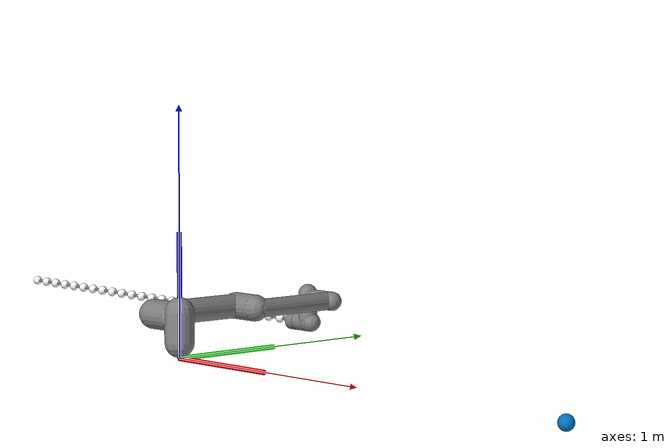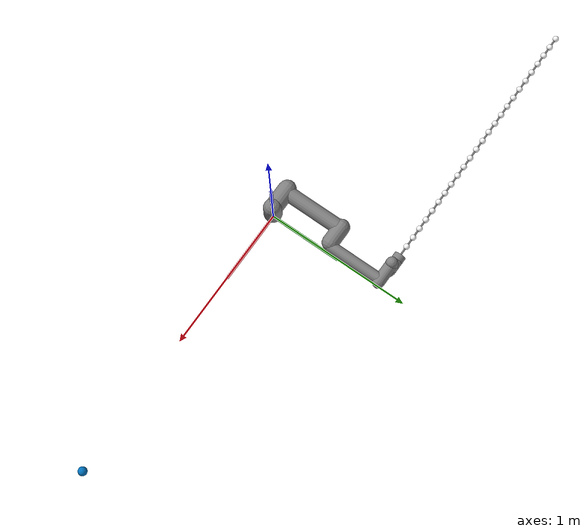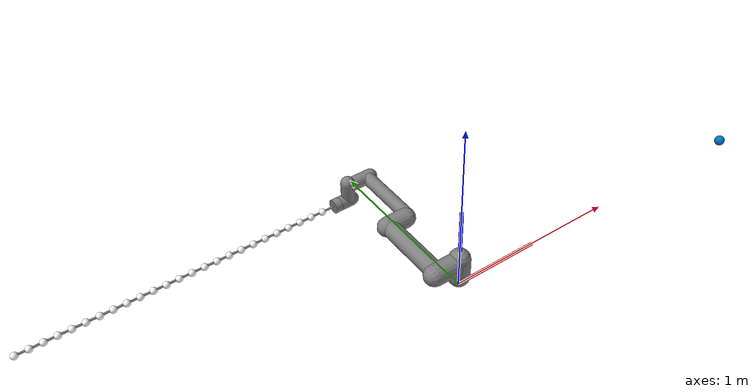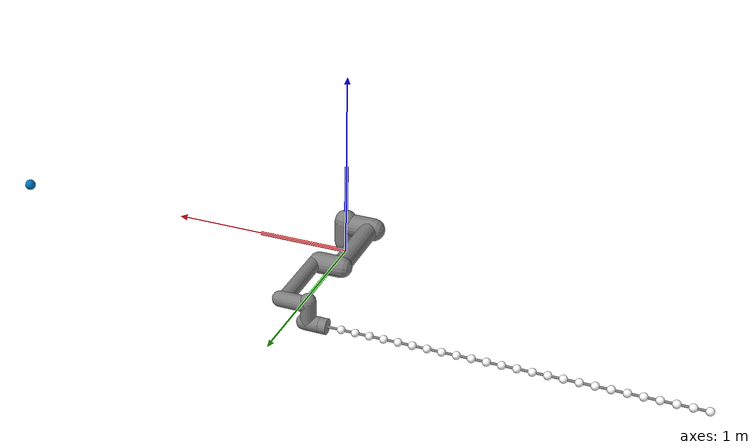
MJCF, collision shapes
<mujoco model="ur5e scene">
  <include file="ur5e.xml"/>

  <statistic center="0.3 0 0.4" extent="0.8"/>

  <visual>
    <headlight diffuse="0.6 0.6 0.6" ambient="0.1 0.1 0.1" specular="0 0 0"/>
    <rgba haze="0.15 0.25 0.35 1"/>
    <global azimuth="120" elevation="-20" offwidth="1920" offheight="1920"/>
  </visual>

  <asset>
    <texture type="skybox" builtin="gradient" rgb1="0.3 0.5 0.7" rgb2="0 0 0" width="512" height="3072"/>
    <texture type="2d" name="groundplane" builtin="checker" mark="edge" rgb1="0.2 0.3 0.4" rgb2="0.1 0.2 0.3"
      markrgb="0.8 0.8 0.8" width="300" height="300"/>
    <material name="groundplane" texture="groundplane" texuniform="true" texrepeat="5 5" reflectance="0.2"/>
  </asset>

  <worldbody>
    <camera name="fixed" pos="-2 -2 2" xyaxes="1 -1 0 0.5 0.5 1"/>
    <camera name="fixed2" pos="-1 -1.3 1.3" xyaxes="1 -1 0 0.5 0.5 1"/>
    <camera name="fixed3" pos="-0.5 -0.5 0.1" xyaxes="0 -1 0 0 0 1"/>
    <camera name="fixed4" pos="-0.5 -0.5 0.4" xyaxes="0 -1 0 0 0 1"/>
    <camera name="fixedx" pos="4 0 0" xyaxes="0 1 0 0 0 1"/>
    <camera name="fixedy" pos="0.6 -3 0" xyaxes="1 0 0 0 0 1"/>
    <camera name="fixedz" pos="0 0 4" xyaxes="1 0 0 0 1 0"/>
    <camera name="new_pos" pos="3 -0.5 0.3" xyaxes="0.1 0.5 0 -0.1 0.1 1"/>

    <light pos="0 0 1.5" dir="0 0 -1" directional="true"/>
  </worldbody>
</mujoco>

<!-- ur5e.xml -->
<mujoco model="ur5e">
  <compiler angle="radian" meshdir="assets" autolimits="true"/>

  <option integrator="implicitfast" timestep="0.002"/>

  <default>
    <default class="ur5e">
      <material specular="0.5" shininess="0.25"/>
      <joint axis="0 1 0" range="-6.28319 6.28319" armature="0.1"/>
      <general dyntype="none" gaintype="fixed" biastype="none" ctrlrange="-150 150" dynprm="1 0 0" gainprm="1 0 0" biasprm="0 0 0"
        forcerange="-150 150"/>
      <default class="size3">
        <default class="size3_limited">
          <joint range="-3.1415 3.1415"/>
          <general ctrlrange="-150 150"/>
        </default>
      </default>
      <default class="size1">
        <general dyntype="none" gaintype="fixed" biastype="none" dynprm="1 0 0" gainprm="1 0 0" biasprm="0 0 0" forcerange="-28 28" ctrlrange="-28 28"/>
      </default>
      <default class="visual">
        <geom type="mesh" contype="0" conaffinity="0" group="2"/>
      </default>
      <default class="collision">
        <geom type="capsule" group="3"/>
        <default class="eef_collision">
          <geom type="cylinder"/>
        </default>
      </default>
      <site size="0.001" rgba="0.5 0.5 0.5 0.3" group="4"/>
    </default>
  </default>

  <asset>
    <material class="ur5e" name="black" rgba="0.033 0.033 0.033 0.8"/>
    <material class="ur5e" name="jointgray" rgba="0.278 0.278 0.278 0.8"/>
    <material class="ur5e" name="linkgray" rgba="0.82 0.82 0.82 0.8"/>
    <material class="ur5e" name="urblue" rgba="0.49 0.678 0.8 0.8"/>
    <material class="ur5e" name="whipcolor" rgba="1 1 1 1"/>

    <mesh file="base_0.obj"/>
    <mesh file="base_1.obj"/>
    <mesh file="shoulder_0.obj"/>
    <mesh file="shoulder_1.obj"/>
    <mesh file="shoulder_2.obj"/>
    <mesh file="upperarm_0.obj"/>
    <mesh file="upperarm_1.obj"/>
    <mesh file="upperarm_2.obj"/>
    <mesh file="upperarm_3.obj"/>
    <mesh file="forearm_0.obj"/>
    <mesh file="forearm_1.obj"/>
    <mesh file="forearm_2.obj"/>
    <mesh file="forearm_3.obj"/>
    <mesh file="wrist1_0.obj"/>
    <mesh file="wrist1_1.obj"/>
    <mesh file="wrist1_2.obj"/>
    <mesh file="wrist2_0.obj"/>
    <mesh file="wrist2_1.obj"/>
    <mesh file="wrist2_2.obj"/>
    <mesh file="wrist3.obj"/>
  </asset>

  <worldbody>
    <light name="spotlight" mode="targetbodycom" target="wrist_2_link" pos="0 -1 2"/>
    <body name="base" quat="1 0 0 1" childclass="ur5e" gravcomp="0">
      <inertial mass="4.0" pos="0 0 0" diaginertia="0.00443333156 0.00443333156 0.0072"/>
      <geom mesh="base_0" material="black" class="visual"/>
      <geom mesh="base_1" material="jointgray" class="visual"/>
      <body name="shoulder_link" pos="0 0 0.163" gravcomp="0">
        <inertial mass="3.7" pos="0 0 0" diaginertia="0.0102675 0.0102675 0.00666"/>
        <joint name="shoulder_pan_joint" class="size3" axis="0 0 1" actuatorgravcomp="false"/>
        <geom mesh="shoulder_0" material="urblue" class="visual"/>
        <geom mesh="shoulder_1" material="black" class="visual"/>
        <geom mesh="shoulder_2" material="jointgray" class="visual"/>
        <geom class="collision" size="0.06 0.06" pos="0 0 -0.04"/>
        <body name="upper_arm_link" pos="0 0.138 0" quat="1 0 1 0" gravcomp="0">
          <inertial mass="8.393" pos="0 0 0.2125" diaginertia="0.133886 0.133886 0.0151074"/>
          <joint name="shoulder_lift_joint" class="size3" actuatorgravcomp="false"/>
          <geom mesh="upperarm_0" material="linkgray" class="visual"/>
          <geom mesh="upperarm_1" material="black" class="visual"/>
          <geom mesh="upperarm_2" material="jointgray" class="visual"/>
          <geom mesh="upperarm_3" material="urblue" class="visual"/>
          <geom class="collision" pos="0 -0.04 0" quat="1 1 0 0" size="0.06 0.06"/>
          <geom class="collision" size="0.05 0.2" pos="0 0 0.2"/>
          <body name="forearm_link" pos="0 -0.131 0.425" gravcomp="0">
            <inertial mass="2.275" pos="0 0 0.196" diaginertia="0.0311796 0.0311796 0.004095"/>
            <joint name="elbow_joint" class="size3_limited" actuatorgravcomp="false"/>
            <geom mesh="forearm_0" material="urblue" class="visual"/>
            <geom mesh="forearm_1" material="linkgray" class="visual"/>
            <geom mesh="forearm_2" material="black" class="visual"/>
            <geom mesh="forearm_3" material="jointgray" class="visual"/>
            <geom class="collision" pos="0 0.08 0" quat="1 1 0 0" size="0.055 0.06"/>
            <geom class="collision" size="0.038 0.19" pos="0 0 0.2"/>
            <body name="wrist_1_link" pos="0 0 0.392" quat="1 0 1 0" gravcomp="0">
              <inertial mass="1.219" pos="0 0.127 0" diaginertia="0.0025599 0.0025599 0.0021942"/>
              <joint name="wrist_1_joint" class="size1" actuatorgravcomp="false"/>
              <geom mesh="wrist1_0" material="black" class="visual"/>
              <geom mesh="wrist1_1" material="urblue" class="visual"/>
              <geom mesh="wrist1_2" material="jointgray" class="visual"/>
              <geom class="collision" pos="0 0.05 0" quat="1 1 0 0" size="0.04 0.07"/>
              <body name="wrist_2_link" pos="0 0.127 0" gravcomp="0">
                <inertial mass="1.219" pos="0 0 0.1" diaginertia="0.0025599 0.0025599 0.0021942"/>
                <joint name="wrist_2_joint" axis="0 0 1" class="size1" actuatorgravcomp="false"/>
                <geom mesh="wrist2_0" material="black" class="visual"/>
                <geom mesh="wrist2_1" material="urblue" class="visual"/>
                <geom mesh="wrist2_2" material="jointgray" class="visual"/>
                <geom class="collision" size="0.04 0.06" pos="0 0 0.04"/>
                <geom class="collision" pos="0 0.02 0.1" quat="1 1 0 0" size="0.04 0.04"/>
                <body name="wrist_3_link" pos="0 0 0.1" gravcomp="0">
                  <inertial mass="0.1889" pos="0 0.0771683 0" quat="1 0 0 1"
                    diaginertia="0.000132134 9.90863e-05 9.90863e-05"/>
                  <joint name="wrist_3_joint" class="size1" actuatorgravcomp="false"/>
                  <geom material="linkgray" mesh="wrist3" class="visual"/>
                  <geom class="eef_collision" pos="0 0.08 0" quat="1 1 0 0" size="0.04 0.02"/>
                  <site name="attachment_site" pos="0 0.1 0" quat="-1 1 0 0"/>
                  <!-- Whip -->
                  <body name="body_whip_node1" euler="1.56 0 0" pos="0 0.10 0">
                    <joint name="joint_whip_node1_X" type="hinge" axis="1  0 0" pos="0 0 0" springref="0" stiffness="0." damping="0.092" />
                    <joint name="joint_whip_node1_Y" type="hinge" axis="0 -1 0" pos="0 0 0" springref="0" stiffness="0." damping="0.092" />
                    <geom type="cylinder" fromto="0 0 0 0 0 -0.0720" size="0.0060000" mass="0" />
                    <geom name="geom_whip_node1" type="sphere" material="whipcolor" pos="0 0 -0.0720" size="0.0200000" mass="0.0120000"  contype="4" conaffinity="4"/>
                    <site name="whip_dir" pos="0 0 0" quat="0 1 0 0"/>
                    <body name="body_whip_node2" euler="0 0 0" pos="0 0 -0.0720">
                      <joint name="joint_whip_node2_X" type="hinge" axis="1  0 0" pos="0 0 0" springref="0" stiffness="0.242" damping="0.092" />
                      <joint name="joint_whip_node2_Y" type="hinge" axis="0 -1 0" pos="0 0 0" springref="0" stiffness="0.242" damping="0.092" />
                        <geom type="cylinder" fromto="0 0 0 0 0 -0.0720" size="0.0060000" mass="0" />
                        <geom name="geom_whip_node2" type="sphere" material="whipcolor" pos="0 0 -0.0720" size="0.0200000" mass="0.0120000"  contype="4" conaffinity="4"/>
                        <body name="body_whip_node3" euler="0 0 0" pos="0 0 -0.0720">
                          <joint name="joint_whip_node3_X" type="hinge" axis="1  0 0" pos="0 0 0" springref="0" stiffness="0.242" damping="0.092" />
                          <joint name="joint_whip_node3_Y" type="hinge" axis="0 -1 0" pos="0 0 0" springref="0" stiffness="0.242" damping="0.092" />
                          <geom type="cylinder" fromto="0 0 0 0 0 -0.0720" size="0.0060000" mass="0" />
                          <geom name="geom_whip_node3" type="sphere" material="whipcolor" pos="0 0 -0.0720" size="0.0200000" mass="0.0120000"  contype="4" conaffinity="4"/>
                          <body name="body_whip_node4" euler="0 0 0" pos="0 0 -0.0720">
                            <joint name="joint_whip_node4_X" type="hinge" axis="1  0 0" pos="0 0 0" springref="0" stiffness="0.242" damping="0.092" />
                            <joint name="joint_whip_node4_Y" type="hinge" axis="0 -1 0" pos="0 0 0" springref="0" stiffness="0.242" damping="0.092" />
                              <geom type="cylinder" fromto="0 0 0 0 0 -0.0720" size="0.0060000" mass="0" />
                              <geom name="geom_whip_node4" type="sphere" material="whipcolor" pos="0 0 -0.0720" size="0.0200000" mass="0.0120000"  contype="4" conaffinity="4"/>
                              <body name="body_whip_node5" euler="0 0 0" pos="0 0 -0.0720">
                                <joint name="joint_whip_node5_X" type="hinge" axis="1  0 0" pos="0 0 0" springref="0" stiffness="0.242" damping="0.092" />
                                <joint name="joint_whip_node5_Y" type="hinge" axis="0 -1 0" pos="0 0 0" springref="0" stiffness="0.242" damping="0.092" />
                                <geom type="cylinder" fromto="0 0 0 0 0 -0.0720" size="0.0060000" mass="0" />
                                <geom name="geom_whip_node5" type="sphere" material="whipcolor" pos="0 0 -0.0720" size="0.0200000" mass="0.0120000"  contype="4" conaffinity="4"/>
                                <body name="body_whip_node6" euler="0 0 0" pos="0 0 -0.0720">
                                  <joint name="joint_whip_node6_X" type="hinge" axis="1  0 0" pos="0 0 0" springref="0" stiffness="0.242" damping="0.092" />
                                  <joint name="joint_whip_node6_Y" type="hinge" axis="0 -1 0" pos="0 0 0" springref="0" stiffness="0.242" damping="0.092" />
                                    <geom type="cylinder" fromto="0 0 0 0 0 -0.0720" size="0.0060000" mass="0" />
                                    <geom name="geom_whip_node6" type="sphere" material="whipcolor" pos="0 0 -0.0720" size="0.0200000" mass="0.0120000"  contype="4" conaffinity="4"/>
                                    <body name="body_whip_node7" euler="0 0 0" pos="0 0 -0.0720">
                                      <joint name="joint_whip_node7_X" type="hinge" axis="1  0 0" pos="0 0 0" springref="0" stiffness="0.242" damping="0.092" />
                                      <joint name="joint_whip_node7_Y" type="hinge" axis="0 -1 0" pos="0 0 0" springref="0" stiffness="0.242" damping="0.092" />
                                      <geom type="cylinder" fromto="0 0 0 0 0 -0.0720" size="0.0060000" mass="0" />
                                      <geom name="geom_whip_node7" type="sphere" material="whipcolor" pos="0 0 -0.0720" size="0.0200000" mass="0.0120000"  contype="4" conaffinity="4"/>
                                      <body name="body_whip_node8" euler="0 0 0" pos="0 0 -0.0720">
                                        <joint name="joint_whip_node8_X" type="hinge" axis="1  0 0" pos="0 0 0" springref="0" stiffness="0.242" damping="0.092" />
                                        <joint name="joint_whip_node8_Y" type="hinge" axis="0 -1 0" pos="0 0 0" springref="0" stiffness="0.242" damping="0.092" />
                                          <geom type="cylinder" fromto="0 0 0 0 0 -0.0720" size="0.0060000" mass="0" />
                                          <geom name="geom_whip_node8" type="sphere" material="whipcolor" pos="0 0 -0.0720" size="0.0200000" mass="0.0120000"  contype="4" conaffinity="4"/>
                                          <body name="body_whip_node9" euler="0 0 0" pos="0 0 -0.0720">
                                            <joint name="joint_whip_node9_X" type="hinge" axis="1  0 0" pos="0 0 0" springref="0" stiffness="0.242" damping="0.092" />
                                            <joint name="joint_whip_node9_Y" type="hinge" axis="0 -1 0" pos="0 0 0" springref="0" stiffness="0.242" damping="0.092" />
                                            <geom type="cylinder" fromto="0 0 0 0 0 -0.0720" size="0.0060000" mass="0" />
                                            <geom name="geom_whip_node9" type="sphere" material="whipcolor" pos="0 0 -0.0720" size="0.0200000" mass="0.0120000"  contype="4" conaffinity="4"/>
                                            <body name="body_whip_node10" euler="0 0 0" pos="0 0 -0.0720">
                                              <joint name="joint_whip_node10_X" type="hinge" axis="1  0 0" pos="0 0 0" springref="0" stiffness="0.242" damping="0.092" />
                                              <joint name="joint_whip_node10_Y" type="hinge" axis="0 -1 0" pos="0 0 0" springref="0" stiffness="0.242" damping="0.092" />
                                                <geom type="cylinder" fromto="0 0 0 0 0 -0.0720" size="0.0060000" mass="0" />
                                                <geom name="geom_whip_node10" type="sphere" material="whipcolor" pos="0 0 -0.0720" size="0.0200000" mass="0.0120000"  contype="4" conaffinity="4"/>
                                                <body name="body_whip_node11" euler="0 0 0" pos="0 0 -0.0720">
                                                  <joint name="joint_whip_node11_X" type="hinge" axis="1  0 0" pos="0 0 0" springref="0" stiffness="0.242" damping="0.092" />
                                                  <joint name="joint_whip_node11_Y" type="hinge" axis="0 -1 0" pos="0 0 0" springref="0" stiffness="0.242" damping="0.092" />
                                                  <geom type="cylinder" fromto="0 0 0 0 0 -0.0720" size="0.0060000" mass="0" />
                                                  <geom name="geom_whip_node11" type="sphere" material="whipcolor" pos="0 0 -0.0720" size="0.0200000" mass="0.0120000"  contype="4" conaffinity="4"/>
                                                  <body name="body_whip_node12" euler="0 0 0" pos="0 0 -0.0720">
                                                    <joint name="joint_whip_node12_X" type="hinge" axis="1  0 0" pos="0 0 0" springref="0" stiffness="0.242" damping="0.092" />
                                                    <joint name="joint_whip_node12_Y" type="hinge" axis="0 -1 0" pos="0 0 0" springref="0" stiffness="0.242" damping="0.092" />
                                                      <geom type="cylinder" fromto="0 0 0 0 0 -0.0720" size="0.0060000" mass="0" />
                                                      <geom name="geom_whip_node12" type="sphere" material="whipcolor" pos="0 0 -0.0720" size="0.0200000" mass="0.0120000"  contype="4" conaffinity="4"/>
                                                      <body name="body_whip_node13" euler="0 0 0" pos="0 0 -0.0720">
                                                        <joint name="joint_whip_node13_X" type="hinge" axis="1  0 0" pos="0 0 0" springref="0" stiffness="0.242" damping="0.092" />
                                                        <joint name="joint_whip_node13_Y" type="hinge" axis="0 -1 0" pos="0 0 0" springref="0" stiffness="0.242" damping="0.092" />
                                                        <geom type="cylinder" fromto="0 0 0 0 0 -0.0720" size="0.0060000" mass="0" />
                                                        <geom name="geom_whip_node13" type="sphere" material="whipcolor" pos="0 0 -0.0720" size="0.0200000" mass="0.0120000"  contype="4" conaffinity="4"/>
                                                        <body name="body_whip_node14" euler="0 0 0" pos="0 0 -0.0720">
                                                          <joint name="joint_whip_node14_X" type="hinge" axis="1  0 0" pos="0 0 0" springref="0" stiffness="0.242" damping="0.092" />
                                                          <joint name="joint_whip_node14_Y" type="hinge" axis="0 -1 0" pos="0 0 0" springref="0" stiffness="0.242" damping="0.092" />
                                                            <geom type="cylinder" fromto="0 0 0 0 0 -0.0720" size="0.0060000" mass="0" />
                                                            <geom name="geom_whip_node14" type="sphere" material="whipcolor" pos="0 0 -0.0720" size="0.0200000" mass="0.0120000"  contype="4" conaffinity="4"/>
                                                            <body name="body_whip_node15" euler="0 0 0" pos="0 0 -0.0720">
                                                              <joint name="joint_whip_node15_X" type="hinge" axis="1  0 0" pos="0 0 0" springref="0" stiffness="0.242" damping="0.092" />
                                                              <joint name="joint_whip_node15_Y" type="hinge" axis="0 -1 0" pos="0 0 0" springref="0" stiffness="0.242" damping="0.092" />
                                                              <geom type="cylinder" fromto="0 0 0 0 0 -0.0720" size="0.0060000" mass="0" />
                                                              <geom name="geom_whip_node15" type="sphere" material="whipcolor" pos="0 0 -0.0720" size="0.0200000" mass="0.0120000"  contype="4" conaffinity="4"/>
                                                              <body name="body_whip_node16" euler="0 0 0" pos="0 0 -0.0720">
                                                                <joint name="joint_whip_node16_X" type="hinge" axis="1  0 0" pos="0 0 0" springref="0" stiffness="0.242" damping="0.092" />
                                                                <joint name="joint_whip_node16_Y" type="hinge" axis="0 -1 0" pos="0 0 0" springref="0" stiffness="0.242" damping="0.092" />
                                                                  <geom type="cylinder" fromto="0 0 0 0 0 -0.0720" size="0.0060000" mass="0" />
                                                                  <geom name="geom_whip_node16" type="sphere" material="whipcolor" pos="0 0 -0.0720" size="0.0200000" mass="0.0120000"  contype="4" conaffinity="4"/>
                                                                  <body name="body_whip_node17" euler="0 0 0" pos="0 0 -0.0720">
                                                                    <joint name="joint_whip_node17_X" type="hinge" axis="1  0 0" pos="0 0 0" springref="0" stiffness="0.242" damping="0.092" />
                                                                    <joint name="joint_whip_node17_Y" type="hinge" axis="0 -1 0" pos="0 0 0" springref="0" stiffness="0.242" damping="0.092" />
                                                                    <geom type="cylinder" fromto="0 0 0 0 0 -0.0720" size="0.0060000" mass="0" />
                                                                    <geom name="geom_whip_node17" type="sphere" material="whipcolor" pos="0 0 -0.0720" size="0.0200000" mass="0.0120000"  contype="4" conaffinity="4"/>
                                                                    <body name="body_whip_node18" euler="0 0 0" pos="0 0 -0.0720">
                                                                      <joint name="joint_whip_node18_X" type="hinge" axis="1  0 0" pos="0 0 0" springref="0" stiffness="0.242" damping="0.092" />
                                                                      <joint name="joint_whip_node18_Y" type="hinge" axis="0 -1 0" pos="0 0 0" springref="0" stiffness="0.242" damping="0.092" />
                                                                        <geom type="cylinder" fromto="0 0 0 0 0 -0.0720" size="0.0060000" mass="0" />
                                                                        <geom name="geom_whip_node18" type="sphere" material="whipcolor" pos="0 0 -0.0720" size="0.0200000" mass="0.0120000"  contype="4" conaffinity="4"/>
                                                                        <body name="body_whip_node19" euler="0 0 0" pos="0 0 -0.0720">
                                                                          <joint name="joint_whip_node19_X" type="hinge" axis="1  0 0" pos="0 0 0" springref="0" stiffness="0.242" damping="0.092" />
                                                                          <joint name="joint_whip_node19_Y" type="hinge" axis="0 -1 0" pos="0 0 0" springref="0" stiffness="0.242" damping="0.092" />
                                                                          <geom type="cylinder" fromto="0 0 0 0 0 -0.0720" size="0.0060000" mass="0" />
                                                                          <geom name="geom_whip_node19" type="sphere" material="whipcolor" pos="0 0 -0.0720" size="0.0200000" mass="0.0120000"  contype="4" conaffinity="4"/>
                                                                          <body name="body_whip_node20" euler="0 0 0" pos="0 0 -0.0720">
                                                                            <joint name="joint_whip_node20_X" type="hinge" axis="1  0 0" pos="0 0 0" springref="0" stiffness="0.242" damping="0.092" />
                                                                            <joint name="joint_whip_node20_Y" type="hinge" axis="0 -1 0" pos="0 0 0" springref="0" stiffness="0.242" damping="0.092" />
                                                                              <geom type="cylinder" fromto="0 0 0 0 0 -0.0720" size="0.0060000" mass="0" />
                                                                              <geom name="geom_whip_node20" type="sphere" material="whipcolor" pos="0 0 -0.0720" size="0.0200000" mass="0.0120000"  contype="4" conaffinity="4"/>
                                                                              <body name="body_whip_node21" euler="0 0 0" pos="0 0 -0.0720">
                                                                                <joint name="joint_whip_node21_X" type="hinge" axis="1  0 0" pos="0 0 0" springref="0" stiffness="0.242" damping="0.092" />
                                                                                <joint name="joint_whip_node21_Y" type="hinge" axis="0 -1 0" pos="0 0 0" springref="0" stiffness="0.242" damping="0.092" />
                                                                                <geom type="cylinder" fromto="0 0 0 0 0 -0.0720" size="0.0060000" mass="0" />
                                                                                <geom name="geom_whip_node21" type="sphere" material="whipcolor" pos="0 0 -0.0720" size="0.0200000" mass="0.0120000"  contype="4" conaffinity="4"/>
                                                                                <body name="body_whip_node22" euler="0 0 0" pos="0 0 -0.0720">
                                                                                  <joint name="joint_whip_node22_X" type="hinge" axis="1  0 0" pos="0 0 0" springref="0" stiffness="0.242" damping="0.092" />
                                                                                  <joint name="joint_whip_node22_Y" type="hinge" axis="0 -1 0" pos="0 0 0" springref="0" stiffness="0.242" damping="0.092" />
                                                                                    <geom type="cylinder" fromto="0 0 0 0 0 -0.0720" size="0.0060000" mass="0" />
                                                                                    <geom name="geom_whip_node22" type="sphere" material="whipcolor" pos="0 0 -0.0720" size="0.0200000" mass="0.0120000"  contype="4" conaffinity="4"/>
                                                                                    <body name="body_whip_node23" euler="0 0 0" pos="0 0 -0.0720">
                                                                                      <joint name="joint_whip_node23_X" type="hinge" axis="1  0 0" pos="0 0 0" springref="0" stiffness="0.242" damping="0.092" />
                                                                                      <joint name="joint_whip_node23_Y" type="hinge" axis="0 -1 0" pos="0 0 0" springref="0" stiffness="0.242" damping="0.092" />
                                                                                      <geom type="cylinder" fromto="0 0 0 0 0 -0.0720" size="0.0060000" mass="0" />
                                                                                      <geom name="geom_whip_node23" type="sphere" material="whipcolor" pos="0 0 -0.0720" size="0.0200000" mass="0.0120000"  contype="4" conaffinity="4"/>
                                                                                      <body name="body_whip_node24" euler="0 0 0" pos="0 0 -0.0720">
                                                                                        <joint name="joint_whip_node24_X" type="hinge" axis="1  0 0" pos="0 0 0" springref="0" stiffness="0.242" damping="0.092" />
                                                                                        <joint name="joint_whip_node24_Y" type="hinge" axis="0 -1 0" pos="0 0 0" springref="0" stiffness="0.242" damping="0.092" />
                                                                                          <geom type="cylinder" fromto="0 0 0 0 0 -0.0720" size="0.0060000" mass="0" />
                                                                                          <geom name="geom_whip_node24" type="sphere" material="whipcolor" pos="0 0 -0.0720" size="0.0200000" mass="0.0120000"  contype="4" conaffinity="4"/>
                                                                                          <body name="body_whip_node25" euler="0 0 0" pos="0 0 -0.0720">
                                                                                            <joint name="joint_whip_node25_X" type="hinge" axis="1  0 0" pos="0 0 0" springref="0" stiffness="0.242" damping="0.092" />
                                                                                            <joint name="joint_whip_node25_Y" type="hinge" axis="0 -1 0" pos="0 0 0" springref="0" stiffness="0.242" damping="0.092" />
                                                                                            <geom type="cylinder" fromto="0 0 0 0 0 -0.0720" size="0.0060000" mass="0" />
                                                                                            <geom name="geom_whip_node25" type="sphere" material="whipcolor" pos="0 0 -0.0720" size="0.0200000" mass="0.0120000"  contype="4" conaffinity="4"/>
                                                                                            <site name='site_whip_tip' pos='0 0 -0.0720' />
                                                                                          </body>
                                                                                      </body>
                                                                                    </body>
                                                                                </body>
                                                                              </body>
                                                                          </body>
                                                                        </body>
                                                                    </body>
                                                                  </body>
                                                              </body>
                                                            </body>
                                                        </body>
                                                      </body>
                                                  </body>
                                                </body>
                                            </body>
                                          </body>
                                      </body>
                                    </body>
                                </body>
                              </body>
                          </body>
                        </body>
                    </body>
                  </body>

                </body>
              </body>
            </body>
          </body>
        </body>
      </body>
    </body>
    <body name="target_body" pos="1.9950 0.0000 0.0000" gravcomp="1">
      <joint name="target_joint" type="free"/>
      <geom name="geom_target" type="sphere" size="0.03" rgba="0 0.4470 0.7410 1" mass="0.1" contype="0" conaffinity="0"/>
    </body>

    <geom name="geom_box" type="box" pos="2.0 0.000 0.0000" rgba="0 0.4470 0.7410 0.00" mass="0" size="0.8 0.8 0.8" contype="0" conaffinity="0"/>
    <geom name="x_axis" type="cylinder" fromto="0 0 0 0.5 0 0" size="0.01" mass="0" rgba="1 0 0 1" contype="0" conaffinity="0"/>
    <geom name="y_axis" type="cylinder" fromto="0 0 0 0 0.5 0" size="0.01" mass="0" rgba="0 1 0 1" contype="0" conaffinity="0"/>
    <geom name="z_axis" type="cylinder" fromto="0 0 0 0 0 0.5" size="0.01" mass="0" rgba="0 0 1 1" contype="0" conaffinity="0"/>
  </worldbody>

  <actuator>
    <general class="size3" name="shoulder_pan" joint="shoulder_pan_joint"/>
    <general class="size3" name="shoulder_lift" joint="shoulder_lift_joint"/>
    <general class="size3_limited" name="elbow" joint="elbow_joint"/>
    <general class="size1" name="wrist_1" joint="wrist_1_joint"/>
    <general class="size1" name="wrist_2" joint="wrist_2_joint"/>
    <general class="size1" name="wrist_3" joint="wrist_3_joint"/>
  </actuator>

  <size nuserdata="30"/>
</mujoco>
